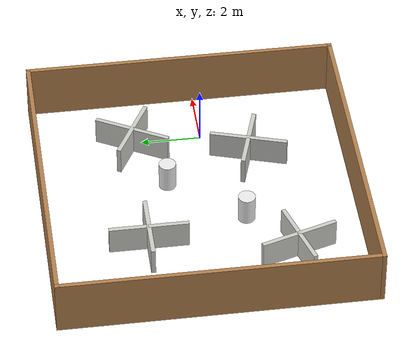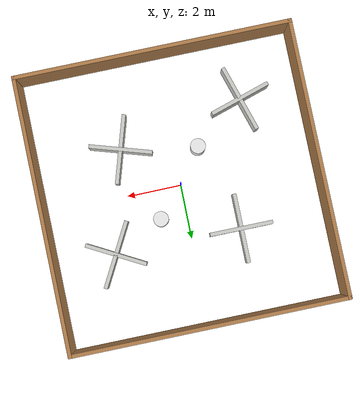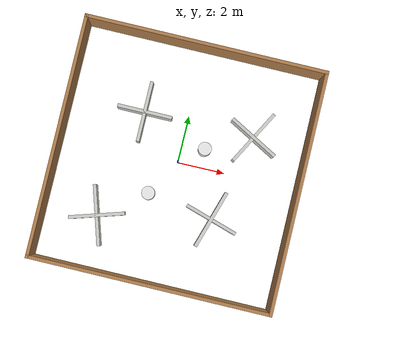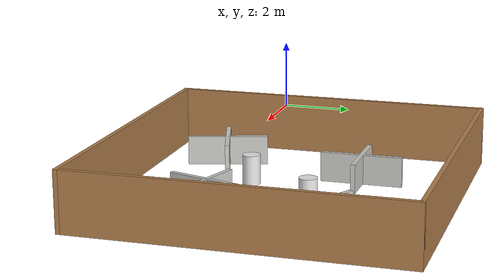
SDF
<sdf version='1.6'>
  <world name='default'>

  <light name='sun' type='directional'>
    <cast_shadows>1</cast_shadows>
    <pose frame=''>0 0 10 0 -0 0</pose>
    <diffuse>0.8 0.8 0.8 1</diffuse>
    <specular>0.1 0.1 0.1 1</specular>
    <attenuation>
      <range>1000</range>
      <constant>0.9</constant>
      <linear>0.01</linear>
      <quadratic>0.001</quadratic>
    </attenuation>
    <direction>-0.5 0.5 -1</direction>
  </light>

  <model name='box'>
    <pose>0 0 -3 0 0 0</pose>
    <static>1</static>
    <link name='Wall_1'>
      <pose frame=''>0 5.425 0 0 -0 0</pose>
      <visual name='Wall_1_Visual'>
        <pose frame=''>0 0 1 0 -0 0</pose>
        <geometry>
          <box>
            <size>11 0.15 2</size>
          </box>
        </geometry>
        <material>
          <script>
            <uri>file://media/materials/scripts/gazebo.material</uri>
            <name>Gazebo/Wood</name>
          </script>
        </material>
      </visual>
      <collision name='Wall_1_Collision'>
        <pose frame=''>0 0 1 0 -0 0</pose>
        <geometry>
          <box>
            <size>11 0.15 2</size>
          </box>
        </geometry>
        <max_contacts>10</max_contacts>
        <surface>
          <bounce/>
          <friction>
            <ode/>
          </friction>
          <contact>
            <ode/>
          </contact>
        </surface>
      </collision>
    </link>

    <link name='Wall_2'>
      <pose frame=''>5.425 0 0 0 0 -1.5708</pose>
      <visual name='Wall_2_Visual'>
        <pose frame=''>0 0 1 0 -0 0</pose>
        <geometry>
          <box>
            <size>11 0.15 2</size>
          </box>
        </geometry>
        <material>
          <script>
            <uri>file://media/materials/scripts/gazebo.material</uri>
            <name>Gazebo/Wood</name>
          </script>
        </material>
      </visual>
      <collision name='Wall_2_Collision'>
        <pose frame=''>0 0 1 0 -0 0</pose>
        <geometry>
          <box>
            <size>11 0.15 2</size>
          </box>
        </geometry>
        <max_contacts>10</max_contacts>
        <surface>
          <bounce/>
          <friction>
            <ode/>
          </friction>
          <contact>
            <ode/>
          </contact>
        </surface>
      </collision>
    </link>

    <link name='Wall_3'>
      <pose frame=''>0 -5.425 0 0 -0 3.14159</pose>
      <visual name='Wall_3_Visual'>
        <pose frame=''>0 0 1 0 -0 0</pose>
        <geometry>
          <box>
            <size>11 0.15 2</size>
          </box>
        </geometry>
        <material>
          <script>
            <uri>file://media/materials/scripts/gazebo.material</uri>
            <name>Gazebo/Wood</name>
          </script>
        </material>
      </visual>
      <collision name='Wall_3_Collision'>
        <pose frame=''>0 0 1 0 -0 0</pose>
        <geometry>
          <box>
            <size>11 0.15 2</size>
          </box>
        </geometry>
        <max_contacts>10</max_contacts>
        <surface>
          <bounce/>
          <friction>
            <ode/>
          </friction>
          <contact>
            <ode/>
          </contact>
        </surface>
      </collision>
    </link>

    <link name='Wall_4'>
      <pose frame=''>-5.425 0 0 0 -0 1.5708</pose>
      <visual name='Wall_4_Visual'>
        <pose frame=''>0 0 1 0 -0 0</pose>
        <geometry>
          <box>
            <size>11 0.15 2</size>
          </box>
        </geometry>
        <material>
          <script>
            <uri>file://media/materials/scripts/gazebo.material</uri>
            <name>Gazebo/Wood</name>
          </script>
        </material>
      </visual>
      <collision name='Wall_4_Collision'>
        <pose frame=''>0 0 1 0 -0 0</pose>
        <geometry>
          <box>
            <size>11 0.15 2</size>
          </box>
        </geometry>
        <max_contacts>10</max_contacts>
        <surface>
          <bounce/>
          <friction>
            <ode/>
          </friction>
          <contact>
            <ode/>
          </contact>
        </surface>
      </collision>
    </link>

  </model>

  <model name='cylindres'>
    <pose>0 0 -3 0 0 0</pose>
    <static>1</static>

    <link name='Cylindre1'>
      <pose frame=''>1 1 0.5 0 0 0</pose>
      <visual name='Cylindre1_Visual'>
        <pose>0 0 0 0 0 0</pose>
        <geometry>
          <cylinder>
            <radius>0.3</radius>
            <length>1</length>
          </cylinder>
        </geometry>
        <material>
          <script>
            <uri>file://media/materials/scripts/gazebo.material</uri>
            <name>Gazebo/White</name>
          </script>
        </material>
      </visual>
      <collision name='Cylindre1_Collision'>
        <pose>0 0 0 0 0 0</pose>
        <geometry>
          <cylinder>
            <radius>0.3</radius>
            <length>1</length>
          </cylinder>
        </geometry>
        <max_contacts>10</max_contacts>
        <surface>
          <bounce/>
          <friction>
            <ode/>
          </friction>
          <contact>
            <ode/>
          </contact>
        </surface>
      </collision>
    </link>

    <link name='Cylindre2'>
      <pose frame=''>-1 -1.5 0.5 0 0 0</pose>
      <visual name='Cylindre2_Visual'>
        <pose>0 0 0 0 0 0</pose>
        <geometry>
          <cylinder>
            <radius>0.3</radius>
            <length>1</length>
          </cylinder>
        </geometry>
        <material>
          <script>
            <uri>file://media/materials/scripts/gazebo.material</uri>
            <name>Gazebo/White</name>
          </script>
        </material>
      </visual>
      <collision name='Cylindre2_Collision'>
        <pose>0 0 0 0 0 0</pose>
        <geometry>
          <cylinder>
            <radius>0.3</radius>
            <length>1</length>
          </cylinder>
        </geometry>
        <max_contacts>10</max_contacts>
        <surface>
          <bounce/>
          <friction>
            <ode/>
          </friction>
          <contact>
            <ode/>
          </contact>
        </surface>
      </collision>
    </link>
  </model>

  <model name='cross1'>
    <pose>-3 -3 -3 0 0 0.3</pose>
    <static>1</static>
    <link name='Wall_5'>
      <pose frame=''>0 0 0 0 -0 0</pose>
      <visual name='Wall_5_Visual'>
        <pose frame=''>0 0 0.5 0 -0 0</pose>
        <geometry>
          <box>
            <size>2.5 0.15 1</size>
          </box>
        </geometry>
        <material>
          <script>
            <uri>file://media/materials/scripts/gazebo.material</uri>
            <name>Gazebo/CeilingTiled</name>
          </script>
        </material>
      </visual>
      <collision name='Wall_5_Collision'>
        <pose frame=''>0 0 0.5 0 -0 0</pose>
        <geometry>
          <box>
            <size>2.5 0.15 1</size>
          </box>
        </geometry>
        <max_contacts>10</max_contacts>
        <surface>
          <bounce/>
          <friction>
            <ode/>
          </friction>
          <contact>
            <ode/>
          </contact>
        </surface>
      </collision>
    </link>

    <link name='Wall_6'>
      <pose frame=''>0 0 0 0 0 -1.5708</pose>
      <visual name='Wall_6_Visual'>
        <pose frame=''>0 0 0.5 0 -0 0</pose>
        <geometry>
          <box>
            <size>2.75 0.15 1</size>
          </box>
        </geometry>
        <material>
          <script>
            <uri>file://media/materials/scripts/gazebo.material</uri>
            <name>Gazebo/CeilingTiled</name>
          </script>
        </material>
      </visual>
      <collision name='Wall_6_Collision'>
        <pose frame=''>0 0 0.5 0 -0 0</pose>
        <geometry>
          <box>
            <size>2.75 0.15 1</size>
          </box>
        </geometry>
        <max_contacts>10</max_contacts>
        <surface>
          <bounce/>
          <friction>
            <ode/>
          </friction>
          <contact>
            <ode/>
          </contact>
        </surface>
      </collision>
    </link>

  </model>

  <model name='cross2'>
    <pose> 3 2 -3 0 0 -0.5</pose>
    <static>1</static>
    <link name='Wall_5'>
      <pose frame=''>0 0 0 0 -0 0</pose>
      <visual name='Wall_5_Visual'>
        <pose frame=''>0 0 0.5 0 -0 0</pose>
        <geometry>
          <box>
            <size>2.5 0.15 1</size>
          </box>
        </geometry>
        <material>
          <script>
            <uri>file://media/materials/scripts/gazebo.material</uri>
            <name>Gazebo/CeilingTiled</name>
          </script>
        </material>
      </visual>
      <collision name='Wall_5_Collision'>
        <pose frame=''>0 0 0.5 0 -0 0</pose>
        <geometry>
          <box>
            <size>2.5 0.15 1</size>
          </box>
        </geometry>
        <max_contacts>10</max_contacts>
        <surface>
          <bounce/>
          <friction>
            <ode/>
          </friction>
          <contact>
            <ode/>
          </contact>
        </surface>
      </collision>
    </link>

    <link name='Wall_6'>
      <pose frame=''>0 0 0 0 0 -1.5708</pose>
      <visual name='Wall_6_Visual'>
        <pose frame=''>0 0 0.5 0 -0 0</pose>
        <geometry>
          <box>
            <size>2.75 0.15 1</size>
          </box>
        </geometry>
        <material>
          <script>
            <uri>file://media/materials/scripts/gazebo.material</uri>
            <name>Gazebo/CeilingTiled</name>
          </script>
        </material>
      </visual>
      <collision name='Wall_6_Collision'>
        <pose frame=''>0 0 0.5 0 -0 0</pose>
        <geometry>
          <box>
            <size>2.75 0.15 1</size>
          </box>
        </geometry>
        <max_contacts>10</max_contacts>
        <surface>
          <bounce/>
          <friction>
            <ode/>
          </friction>
          <contact>
            <ode/>
          </contact>
        </surface>
      </collision>
    </link>

  </model>

  <model name='cross3'>
    <pose>-2 2 -3 0 0 0</pose>
    <static>1</static>
    <link name='Wall_5'>
      <pose frame=''>0 0 0 0 -0 0</pose>
      <visual name='Wall_5_Visual'>
        <pose frame=''>0 0 0.5 0 -0 0</pose>
        <geometry>
          <box>
            <size>2.5 0.15 1</size>
          </box>
        </geometry>
        <material>
          <script>
            <uri>file://media/materials/scripts/gazebo.material</uri>
            <name>Gazebo/CeilingTiled</name>
          </script>
        </material>
      </visual>
      <collision name='Wall_5_Collision'>
        <pose frame=''>0 0 0.5 0 -0 0</pose>
        <geometry>
          <box>
            <size>2.5 0.15 1</size>
          </box>
        </geometry>
        <max_contacts>10</max_contacts>
        <surface>
          <bounce/>
          <friction>
            <ode/>
          </friction>
          <contact>
            <ode/>
          </contact>
        </surface>
      </collision>
    </link>

    <link name='Wall_6'>
      <pose frame=''>0 0 0 0 0 -1.5708</pose>
      <visual name='Wall_6_Visual'>
        <pose frame=''>0 0 0.5 0 -0 0</pose>
        <geometry>
          <box>
            <size>2.75 0.15 1</size>
          </box>
        </geometry>
        <material>
          <script>
            <uri>file://media/materials/scripts/gazebo.material</uri>
            <name>Gazebo/CeilingTiled</name>
          </script>
        </material>
      </visual>
      <collision name='Wall_6_Collision'>
        <pose frame=''>0 0 0.5 0 -0 0</pose>
        <geometry>
          <box>
            <size>2.75 0.15 1</size>
          </box>
        </geometry>
        <max_contacts>10</max_contacts>
        <surface>
          <bounce/>
          <friction>
            <ode/>
          </friction>
          <contact>
            <ode/>
          </contact>
        </surface>
      </collision>
    </link>

  </model>

  <model name='cross4'>
    <pose>2 -2 -3 0 0 -0.3</pose>
    <static>1</static>
    <link name='Wall_5'>
      <pose frame=''>0 0 0 0 -0 0</pose>
      <visual name='Wall_5_Visual'>
        <pose frame=''>0 0 0.5 0 -0 0</pose>
        <geometry>
          <box>
            <size>2.5 0.15 1</size>
          </box>
        </geometry>
        <material>
          <script>
            <uri>file://media/materials/scripts/gazebo.material</uri>
            <name>Gazebo/CeilingTiled</name>
          </script>
        </material>
      </visual>
      <collision name='Wall_5_Collision'>
        <pose frame=''>0 0 0.5 0 -0 0</pose>
        <geometry>
          <box>
            <size>2.5 0.15 1</size>
          </box>
        </geometry>
        <max_contacts>10</max_contacts>
        <surface>
          <bounce/>
          <friction>
            <ode/>
          </friction>
          <contact>
            <ode/>
          </contact>
        </surface>
      </collision>
    </link>

    <link name='Wall_6'>
      <pose frame=''>0 0 0 0 0 -1.5708</pose>
      <visual name='Wall_6_Visual'>
        <pose frame=''>0 0 0.5 0 -0 0</pose>
        <geometry>
          <box>
            <size>2.75 0.15 1</size>
          </box>
        </geometry>
        <material>
          <script>
            <uri>file://media/materials/scripts/gazebo.material</uri>
            <name>Gazebo/CeilingTiled</name>
          </script>
        </material>
      </visual>
      <collision name='Wall_6_Collision'>
        <pose frame=''>0 0 0.5 0 -0 0</pose>
        <geometry>
          <box>
            <size>2.75 0.15 1</size>
          </box>
        </geometry>
        <max_contacts>10</max_contacts>
        <surface>
          <bounce/>
          <friction>
            <ode/>
          </friction>
          <contact>
            <ode/>
          </contact>
        </surface>
      </collision>
    </link>

  </model>

  </world>
</sdf>
